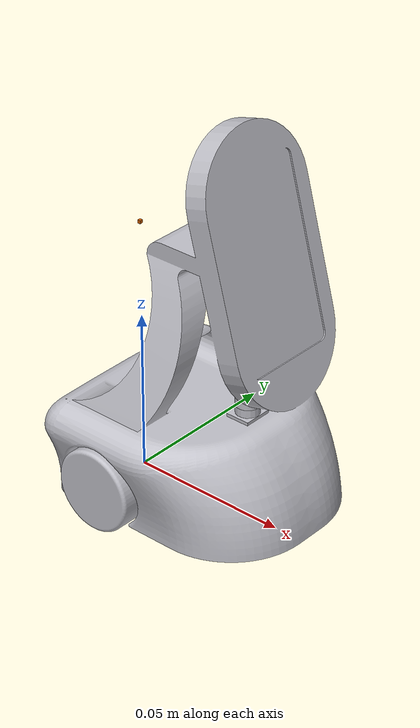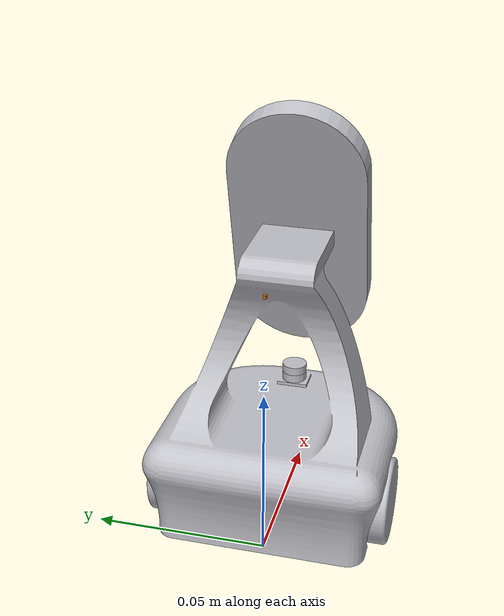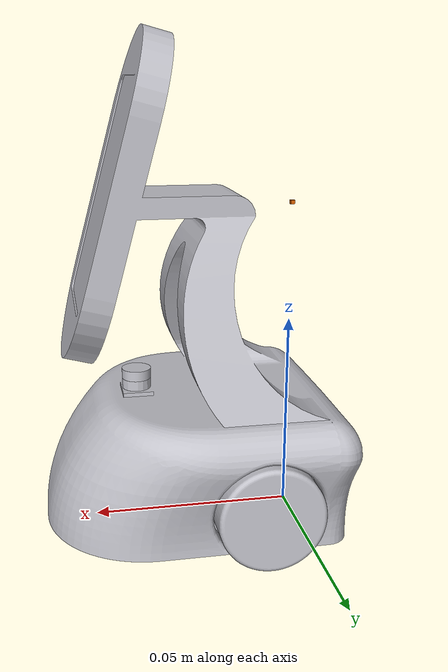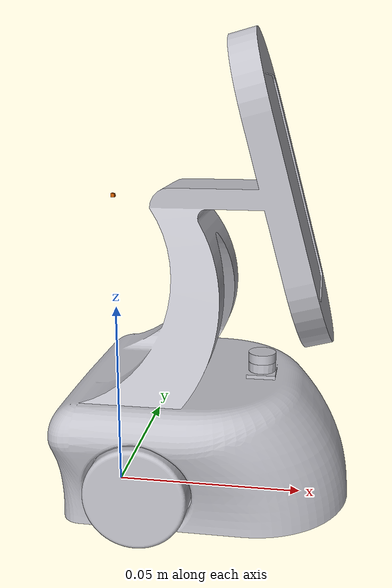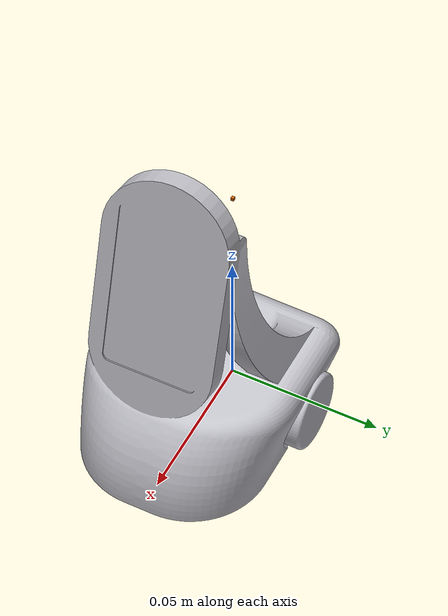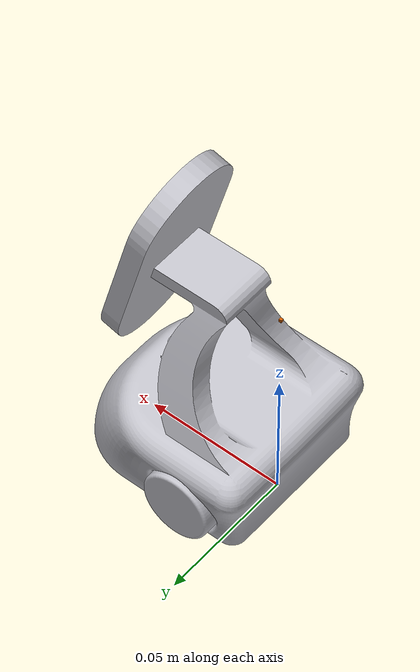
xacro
<?xml version="1.0" ?>
<robot name="my_robot" xmlns:xacro="http://www.ros.org/wiki/xacro">

<xacro:include filename="$(find my_robot_description)/urdf/materials.xacro" />
<xacro:include filename="$(find my_robot_description)/urdf/my_robot.trans" />
<xacro:include filename="$(find my_robot_description)/urdf/my_robot.gazebo" />
<link name="base_link">
  <inertial>
    <origin xyz="0.025783239079809422 0.00014714137640378135 0.03093160269316738" rpy="0 0 0"/>
    <mass value="1.1157169045875805"/>
    <inertia ixx="0.001051" iyy="0.001135" izz="0.000637" ixy="-0.0" iyz="-0.0" ixz="-0.000123"/>
  </inertial>
  <visual>
    <origin xyz="0 0 0" rpy="0 0 0"/>
    <geometry>
      <mesh filename="file://$(find my_robot_description)/meshes/base_link.stl" scale="0.001 0.001 0.001"/>
    </geometry>
    <material name="silver"/>
  </visual>
  <collision>
    <origin xyz="0 0 0" rpy="0 0 0"/>
    <geometry>
      <mesh filename="file://$(find my_robot_description)/meshes/base_link.stl" scale="0.001 0.001 0.001"/>
    </geometry>
  </collision>
</link>

<link name="right_wheel_link_1">
  <inertial>
    <origin xyz="2.42861286636753e-17 -0.004999952387243697 -1.8543427732914397e-07" rpy="0 0 0"/>
    <mass value="0.038273705820230576"/>
    <inertia ixx="2e-06" iyy="3e-06" izz="2e-06" ixy="-0.0" iyz="0.0" ixz="0.0"/>
  </inertial>
  <visual>
    <origin xyz="-0.0125 0.024853 -0.013415" rpy="0 0 0"/>
    <geometry>
      <mesh filename="file://$(find my_robot_description)/meshes/right_wheel_link_1.stl" scale="0.001 0.001 0.001"/>
    </geometry>
    <material name="silver"/>
  </visual>
  <collision>
    <origin xyz="-0.0125 0.024853 -0.013415" rpy="0 0 0"/>
    <geometry>
      <mesh filename="file://$(find my_robot_description)/meshes/right_wheel_link_1.stl" scale="0.001 0.001 0.001"/>
    </geometry>
  </collision>
</link>

<link name="left_wheel_link_1">
  <inertial>
    <origin xyz="1.0408340855860843e-17 0.005000047612756298 -1.8543427732740925e-07" rpy="0 0 0"/>
    <mass value="0.03827370582023058"/>
    <inertia ixx="2e-06" iyy="3e-06" izz="2e-06" ixy="-0.0" iyz="-0.0" ixz="-0.0"/>
  </inertial>
  <visual>
    <origin xyz="-0.0125 -0.025147 -0.013415" rpy="0 0 0"/>
    <geometry>
      <mesh filename="file://$(find my_robot_description)/meshes/left_wheel_link_1.stl" scale="0.001 0.001 0.001"/>
    </geometry>
    <material name="silver"/>
  </visual>
  <collision>
    <origin xyz="-0.0125 -0.025147 -0.013415" rpy="0 0 0"/>
    <geometry>
      <mesh filename="file://$(find my_robot_description)/meshes/left_wheel_link_1.stl" scale="0.001 0.001 0.001"/>
    </geometry>
  </collision>
</link>

<link name="lidar_link_1">
  <inertial>
    <origin xyz="1.3877787807814457e-17 4.7613132748899065e-08 0.001249814565722672" rpy="0 0 0"/>
    <mass value="0.0007990326755140624"/>
    <inertia ixx="0.0" iyy="0.0" izz="0.0" ixy="0.0" iyz="-0.0" ixz="0.0"/>
  </inertial>
  <visual>
    <origin xyz="-0.03925 -0.000147 -0.036915" rpy="0 0 0"/>
    <geometry>
      <mesh filename="file://$(find my_robot_description)/meshes/lidar_link_1.stl" scale="0.001 0.001 0.001"/>
    </geometry>
    <material name="silver"/>
  </visual>
  <collision>
    <origin xyz="-0.03925 -0.000147 -0.036915" rpy="0 0 0"/>
    <geometry>
      <mesh filename="file://$(find my_robot_description)/meshes/lidar_link_1.stl" scale="0.001 0.001 0.001"/>
    </geometry>
  </collision>
</link>

<joint name="Rev1" type="continuous">
  <origin xyz="0.0125 -0.024853 0.013415" rpy="0 0 0"/>
  <parent link="base_link"/>
  <child link="right_wheel_link_1"/>
  <axis xyz="-0.0 1.0 0.0"/>
</joint>

<joint name="Rev2" type="continuous">
  <origin xyz="0.0125 0.025147 0.013415" rpy="0 0 0"/>
  <parent link="base_link"/>
  <child link="left_wheel_link_1"/>
  <axis xyz="-0.0 1.0 0.0"/>
</joint>

<joint name="Rigid4" type="fixed">
  <origin xyz="0.03925 0.000147 0.036915" rpy="0 0 0"/>
  <parent link="base_link"/>
  <child link="lidar_link_1"/>
</joint>

<link name ="base_footprint"/>

<joint name = "base_joint" type = "fixed">
  <parent link = "base_footprint"/>
  <child link = "base_link"/>
  <origin xyz = "0.0 0.0 0.0" rpy="0 0 0"/>
  </joint>

<!-- imu -->
<link name='imu_link'>
  <pose>0 0 0 0 0 0</pose>
  <inertial>
      <mass value="0.01"/>
      <origin xyz="0.0 0 0" rpy="0 0 0"/>
      <inertia
          ixx="1e-7" ixy="0" ixz="0"
          iyy="1e-7" iyz="0"
          izz="1e-7"
      />
  </inertial>
  <visual name='imu_visual'>
      <origin xyz="0 0 0" rpy="0 0 0"/>
      <geometry>
          <box size="0.001 0.001 0.001"/>
      </geometry>
      <material name='imu_material'>
          <ambient>0.1 0.1 0.1 1</ambient>
          <diffuse>0.1 0.1 0.2 1</diffuse>
          <specular>0 0 0 0</specular>
          <emissive>0 0 0 1</emissive>
      </material>
  </visual>
  <collision name='imu_collision'>
      <origin xyz="0 0 0" rpy="0 0 0"/>
      <geometry>
          <box size="0.001 0.001 0.001"/>
      </geometry>
  </collision>
</link>

<joint type="fixed" name="imu_joint">
  <child link="imu_link"/>
  <parent link="base_link"/>
  <origin xyz="0.0 0.0 0.08" rpy="0 0 0"/>
</joint>

</robot>

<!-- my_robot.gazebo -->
<robot name="my_robot" xmlns:xacro="http://www.ros.org/wiki/xacro" >

<xacro:property name="body_color" value="Gazebo/Silver" />

<gazebo>
  <plugin name="control" filename="libgazebo_ros_control.so"/>
</gazebo>
<gazebo reference="base_link">
  <material>${body_color}</material>
  <mu1>0</mu1>
  <mu2>0</mu2>
  <self_collide>true</self_collide>
  <gravity>true</gravity>
</gazebo>

<gazebo reference="right_wheel_link_1">
  <material>${body_color}</material>
  <mu1>1500</mu1>
  <mu2>1500</mu2>
  <self_collide>true</self_collide>
</gazebo>

<gazebo reference="left_wheel_link_1">
  <material>${body_color}</material>
  <mu1>1500</mu1>
  <mu2>1500</mu2>
  <self_collide>true</self_collide>
</gazebo>

<gazebo reference="lidar_link_1">
  <material>${body_color}</material>
  <mu1>0.2</mu1>
  <mu2>0.2</mu2>
  <self_collide>true</self_collide>
</gazebo>

<!-- imu link -->
<gazebo reference="imu_link">
  <gravity>true</gravity>
  <sensor name="twr_imu" type="imu">
      <always_on>true</always_on>
      <update_rate>100</update_rate>
      <visualize>true</visualize>
      <imu>
          <orientation>
              <x>
                  <noise type="gaussian">
                      <mean>0.0</mean>
                      <stddev>2e-3</stddev>
                  </noise>
              </x>
              <y>
                  <noise type="gaussian">
                      <mean>0.0</mean>
                      <stddev>2e-3</stddev>
                  </noise>
              </y>
              <z>
                  <noise type="gaussian">
                      <mean>0.0</mean>
                      <stddev>2e-3</stddev>
                  </noise>
              </z>
          </orientation>
          <angular_velocity>
              <x>
                  <noise type="gaussian">
                      <mean>0.0</mean>
                      <stddev>2e-4</stddev>
                  </noise>
              </x>
              <y>
                  <noise type="gaussian">
                      <mean>0.0</mean>
                      <stddev>2e-4</stddev>
                  </noise>
              </y>
              <z>
                  <noise type="gaussian">
                      <mean>0.0</mean>
                      <stddev>2e-4</stddev>
                  </noise>
              </z>
          </angular_velocity>
          <linear_acceleration>
              <x>
                  <noise type="gaussian">
                      <mean>0.0</mean>
                      <stddev>1.7e-2</stddev>
                  </noise>
              </x>
              <y>
                  <noise type="gaussian">
                      <mean>0.0</mean>
                      <stddev>1.7e-2</stddev>
                  </noise>
              </y>
              <z>
                  <noise type="gaussian">
                      <mean>0.0</mean>
                      <stddev>1.7e-2</stddev>
                  </noise>
              </z>
          </linear_acceleration>
      </imu>
      <plugin name="two_wheeled_robot_imu" filename="libgazebo_ros_imu_sensor.so">
          <ros>
            <namespace></namespace>
            <remapping>~/out:=imu</remapping>
          </ros>
          <initial_orientation_as_reference>false</initial_orientation_as_reference>
          <frame_name>imu_link</frame_name>
      </plugin>
  </sensor>
</gazebo>

<!-- differential drive controller plugin -->
<gazebo>
  <plugin name="four_diff_controller" filename="libgazebo_ros_diff_drive.so">

      <ros>
          <namespace></namespace>
      </ros>

      <update_rate>50</update_rate>
      <num_wheel_pairs>1</num_wheel_pairs>
      <left_joint>Rev2</left_joint>
      <right_joint>Rev1</right_joint>
      <wheel_separation>0.172</wheel_separation>
      <wheel_diameter>0.1</wheel_diameter>
      <max_wheel_torque>20</max_wheel_torque>
      <max_wheel_acceleration>1.0</max_wheel_acceleration>
      <command_topic>cmd_vel</command_topic>
      <publish_odom>true</publish_odom>
      <publish_odom_tf>true</publish_odom_tf>
      <publish_wheel_tf>false</publish_wheel_tf>
      <odometry_topic>odom</odometry_topic>
      <odometry_frame>odom</odometry_frame>
      <robot_base_frame>base_footprint</robot_base_frame>
      <odometry_source>1</odometry_source>
      <ros>
      </ros>
  </plugin>
</gazebo>

<!-- lidar controller plugin -->
<gazebo reference="lidar_link_1">
  <sensor name="lidar" type="ray">
    <always_on>true</always_on>
    <visualize>true</visualize>
    <update_rate>5</update_rate>
    <ray>
      <scan>
        <horizontal>
          <samples>360</samples>
          <resolution>1.000000</resolution>
          <min_angle>0.000000</min_angle>
          <max_angle>6.280000</max_angle>
        </horizontal>
      </scan>
      <range>
        <min>0.120000</min>
        <max>3.5</max>
        <resolution>0.015000</resolution>
      </range>
      <noise>
        <type>gaussian</type>
        <mean>0.0</mean>
        <stddev>0.01</stddev>
      </noise>
    </ray>
    <plugin name="scan" filename="libgazebo_ros_ray_sensor.so">
      <ros>
        <remapping>~/out:=scan</remapping>
      </ros>
      <output_type>sensor_msgs/LaserScan</output_type>
      <frame_name>lidar_link_1</frame_name>
    </plugin>
  </sensor>
</gazebo>

</robot>
